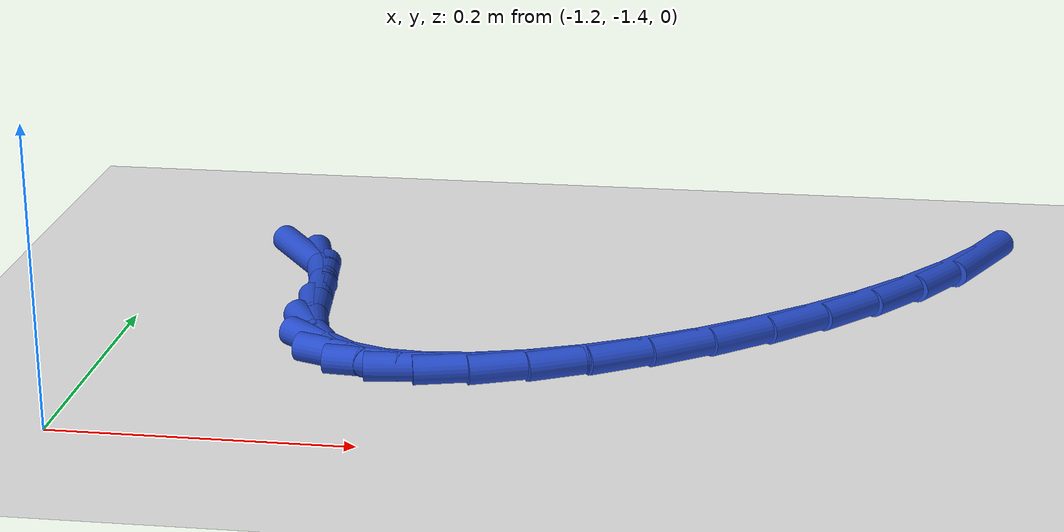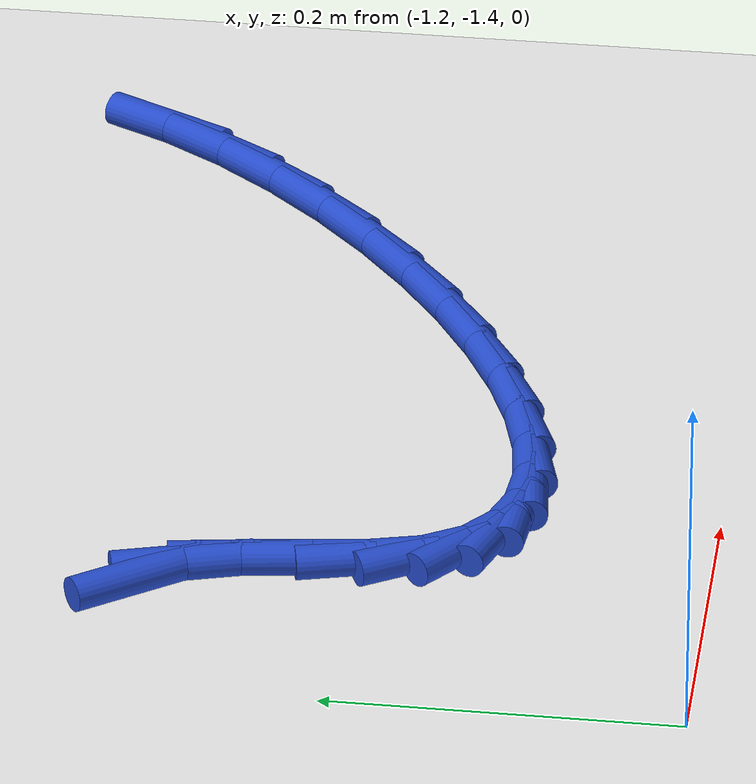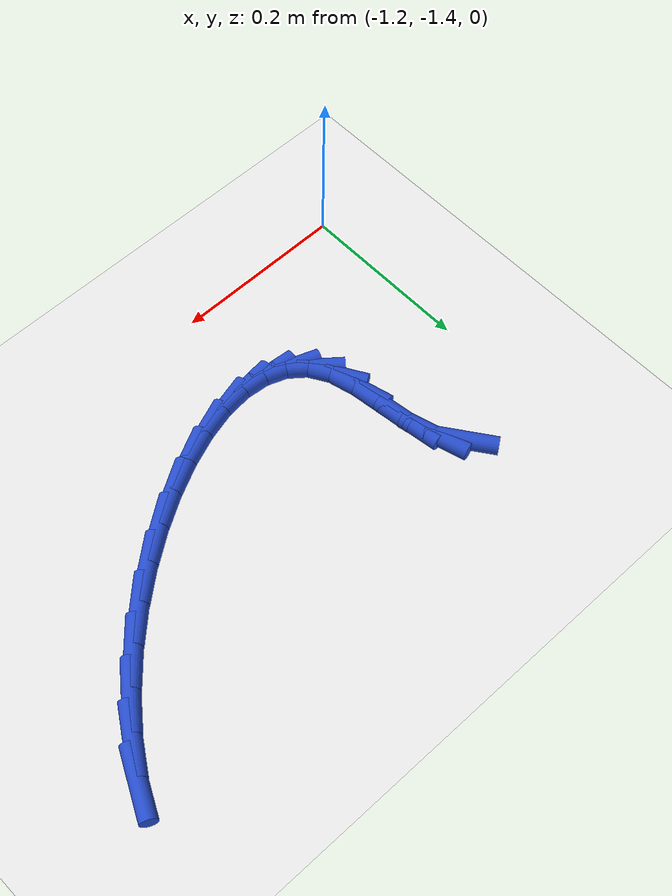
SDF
<sdf version="1.6">
 <world name="default">
  <model name="ground_plane">
   <static>1</static>
   <link name="link">
    <collision name="collision">
     <geometry><plane><normal>0 0 1</normal><size>100 100</size></plane></geometry>
     <surface><friction><ode><mu>100</mu><mu2>50</mu2></ode></friction></surface>
    </collision>
    <visual name="visual">
     <cast_shadows>0</cast_shadows>
     <geometry><plane><normal>0 0 1</normal><size>100 100</size></plane></geometry>
     <material>
      <script><uri>file://media/materials/scripts/gazebo.material</uri><name>Gazebo/WhiteGlow</name></script>
     </material>
    </visual>
   </link>
  </model>
  <model name="line">
   <link name="link_180">
    <pose>-1.1045294670272443 -1.0874800562120643 0.01 0 1.57 -0.9513362794948008</pose>
    <collision name="collision">
     <geometry><cylinder><radius>0.01</radius><length>0.08</length></cylinder></geometry>
    </collision>
    <visual name="visual">
     <material>
      <script><name>Gazebo/Blue</name><uri>file://media/materials/scripts/gazebo.material</uri></script>
     </material>
     <geometry><cylinder><radius>0.01</radius><length>0.08</length></cylinder></geometry>
    </visual>
   </link>
   <link name="link_181">
    <pose>-1.0882827555828418 -1.1102634585634008 0.01 0 1.57 -1.2917766935045316</pose>
    <collision name="collision">
     <geometry><cylinder><radius>0.01</radius><length>0.08</length></cylinder></geometry>
    </collision>
    <visual name="visual">
     <material>
      <script><name>Gazebo/Blue</name><uri>file://media/materials/scripts/gazebo.material</uri></script>
     </material>
     <geometry><cylinder><radius>0.01</radius><length>0.08</length></cylinder></geometry>
    </visual>
   </link>
   <link name="link_182">
    <pose>-1.0794759034892234 -1.1410036376848234 0.01 0 1.57 -1.4316104462876618</pose>
    <collision name="collision">
     <geometry><cylinder><radius>0.01</radius><length>0.08</length></cylinder></geometry>
    </collision>
    <visual name="visual">
     <material>
      <script><name>Gazebo/Blue</name><uri>file://media/materials/scripts/gazebo.material</uri></script>
     </material>
     <geometry><cylinder><radius>0.01</radius><length>0.08</length></cylinder></geometry>
    </visual>
   </link>
   <link name="link_183">
    <pose>-1.0746142760509956 -1.1757068166357503 0.01 0 1.57 -1.4407532262533798</pose>
    <collision name="collision">
     <geometry><cylinder><radius>0.01</radius><length>0.08</length></cylinder></geometry>
    </collision>
    <visual name="visual">
     <material>
      <script><name>Gazebo/Blue</name><uri>file://media/materials/scripts/gazebo.material</uri></script>
     </material>
     <geometry><cylinder><radius>0.01</radius><length>0.08</length></cylinder></geometry>
    </visual>
   </link>
   <link name="link_184">
    <pose>-1.0700949304319776 -1.2102633672526701 0.01 0 1.57 -1.31950647480521</pose>
    <collision name="collision">
     <geometry><cylinder><radius>0.01</radius><length>0.08</length></cylinder></geometry>
    </collision>
    <visual name="visual">
     <material>
      <script><name>Gazebo/Blue</name><uri>file://media/materials/scripts/gazebo.material</uri></script>
     </material>
     <geometry><cylinder><radius>0.01</radius><length>0.08</length></cylinder></geometry>
    </visual>
   </link>
   <link name="link_185">
    <pose>-1.0623160467386241 -1.2405648438472037 0.01 0 1.57 -1.035546993238269</pose>
    <collision name="collision">
     <geometry><cylinder><radius>0.01</radius><length>0.08</length></cylinder></geometry>
    </collision>
    <visual name="visual">
     <material>
      <script><name>Gazebo/Blue</name><uri>file://media/materials/scripts/gazebo.material</uri></script>
     </material>
     <geometry><cylinder><radius>0.01</radius><length>0.08</length></cylinder></geometry>
    </visual>
   </link>
   <link name="link_186">
    <pose>-1.0486800031890582 -1.2635602361282856 0.01 0 1.57 -0.6825625539469409</pose>
    <collision name="collision">
     <geometry><cylinder><radius>0.01</radius><length>0.08</length></cylinder></geometry>
    </collision>
    <visual name="visual">
     <material>
      <script><name>Gazebo/Blue</name><uri>file://media/materials/scripts/gazebo.material</uri></script>
     </material>
     <geometry><cylinder><radius>0.01</radius><length>0.08</length></cylinder></geometry>
    </visual>
   </link>
   <link name="link_187">
    <pose>-1.029440057078095 -1.2792005514487284 0.01 0 1.57 -0.3489924843299311</pose>
    <collision name="collision">
     <geometry><cylinder><radius>0.01</radius><length>0.08</length></cylinder></geometry>
    </collision>
    <visual name="visual">
     <material>
      <script><name>Gazebo/Blue</name><uri>file://media/materials/scripts/gazebo.material</uri></script>
     </material>
     <geometry><cylinder><radius>0.01</radius><length>0.08</length></cylinder></geometry>
    </visual>
   </link>
   <link name="link_188">
    <pose>-1.0053519384157539 -1.2879659083288177 0.01 0 1.57 -0.08392130003548401</pose>
    <collision name="collision">
     <geometry><cylinder><radius>0.01</radius><length>0.08</length></cylinder></geometry>
    </collision>
    <visual name="visual">
     <material>
      <script><name>Gazebo/Blue</name><uri>file://media/materials/scripts/gazebo.material</uri></script>
     </material>
     <geometry><cylinder><radius>0.01</radius><length>0.08</length></cylinder></geometry>
    </visual>
   </link>
   <link name="link_189">
    <pose>-0.9771713772120537 -1.2903364252888414 0.01 0 1.57 0.11198231323475359</pose>
    <collision name="collision">
     <geometry><cylinder><radius>0.01</radius><length>0.08</length></cylinder></geometry>
    </collision>
    <visual name="visual">
     <material>
      <script><name>Gazebo/Blue</name><uri>file://media/materials/scripts/gazebo.material</uri></script>
     </material>
     <geometry><cylinder><radius>0.01</radius><length>0.08</length></cylinder></geometry>
    </visual>
   </link>
   <link name="link_190">
    <pose>-0.9456541034770121 -1.2867922208490854 0.01 0 1.57 0.25747680932476075</pose>
    <collision name="collision">
     <geometry><cylinder><radius>0.01</radius><length>0.08</length></cylinder></geometry>
    </collision>
    <visual name="visual">
     <material>
      <script><name>Gazebo/Blue</name><uri>file://media/materials/scripts/gazebo.material</uri></script>
     </material>
     <geometry><cylinder><radius>0.01</radius><length>0.08</length></cylinder></geometry>
    </visual>
   </link>
   <link name="link_191">
    <pose>-0.9115558472206479 -1.277813413529837 0.01 0 1.57 0.3699972413202077</pose>
    <collision name="collision">
     <geometry><cylinder><radius>0.01</radius><length>0.08</length></cylinder></geometry>
    </collision>
    <visual name="visual">
     <material>
      <script><name>Gazebo/Blue</name><uri>file://media/materials/scripts/gazebo.material</uri></script>
     </material>
     <geometry><cylinder><radius>0.01</radius><length>0.08</length></cylinder></geometry>
    </visual>
   </link>
   <link name="link_192">
    <pose>-0.8756323384529782 -1.263880121851381 0.01 0 1.57 0.46172414477691276</pose>
    <collision name="collision">
     <geometry><cylinder><radius>0.01</radius><length>0.08</length></cylinder></geometry>
    </collision>
    <visual name="visual">
     <material>
      <script><name>Gazebo/Blue</name><uri>file://media/materials/scripts/gazebo.material</uri></script>
     </material>
     <geometry><cylinder><radius>0.01</radius><length>0.08</length></cylinder></geometry>
    </visual>
   </link>
   <link name="link_193">
    <pose>-0.8386393071840237 -1.2454724643340065 0.01 0 1.57 0.5407704617044105</pose>
    <collision name="collision">
     <geometry><cylinder><radius>0.01</radius><length>0.08</length></cylinder></geometry>
    </collision>
    <visual name="visual">
     <material>
      <script><name>Gazebo/Blue</name><uri>file://media/materials/scripts/gazebo.material</uri></script>
     </material>
     <geometry><cylinder><radius>0.01</radius><length>0.08</length></cylinder></geometry>
    </visual>
   </link>
   <link name="link_194">
    <pose>-0.8013324834238018 -1.2230705594979987 0.01 0 1.57 0.6127368885693836</pose>
    <collision name="collision">
     <geometry><cylinder><radius>0.01</radius><length>0.08</length></cylinder></geometry>
    </collision>
    <visual name="visual">
     <material>
      <script><name>Gazebo/Blue</name><uri>file://media/materials/scripts/gazebo.material</uri></script>
     </material>
     <geometry><cylinder><radius>0.01</radius><length>0.08</length></cylinder></geometry>
    </visual>
   </link>
   <link name="link_195">
    <pose>-0.7644675971823311 -1.1971545258636442 0.01 0 1.57 0.6818169481141936</pose>
    <collision name="collision">
     <geometry><cylinder><radius>0.01</radius><length>0.08</length></cylinder></geometry>
    </collision>
    <visual name="visual">
     <material>
      <script><name>Gazebo/Blue</name><uri>file://media/materials/scripts/gazebo.material</uri></script>
     </material>
     <geometry><cylinder><radius>0.01</radius><length>0.08</length></cylinder></geometry>
    </visual>
   </link>
   <link name="link_196">
    <pose>-0.72880037846963 -1.1682044819512303 0.01 0 1.57 0.7515264018577763</pose>
    <collision name="collision">
     <geometry><cylinder><radius>0.01</radius><length>0.08</length></cylinder></geometry>
    </collision>
    <visual name="visual">
     <material>
      <script><name>Gazebo/Blue</name><uri>file://media/materials/scripts/gazebo.material</uri></script>
     </material>
     <geometry><cylinder><radius>0.01</radius><length>0.08</length></cylinder></geometry>
    </visual>
   </link>
   <link name="link_197">
    <pose>-0.6950865572957168 -1.1367005462810431 0.01 0 1.57 0.8252179146422697</pose>
    <collision name="collision">
     <geometry><cylinder><radius>0.01</radius><length>0.08</length></cylinder></geometry>
    </collision>
    <visual name="visual">
     <material>
      <script><name>Gazebo/Blue</name><uri>file://media/materials/scripts/gazebo.material</uri></script>
     </material>
     <geometry><cylinder><radius>0.01</radius><length>0.08</length></cylinder></geometry>
    </visual>
   </link>
   <link name="link_198">
    <pose>-0.6640818636706101 -1.1031228373733697 0.01 0 1.57 0.9064959332313254</pose>
    <collision name="collision">
     <geometry><cylinder><radius>0.01</radius><length>0.08</length></cylinder></geometry>
    </collision>
    <visual name="visual">
     <material>
      <script><name>Gazebo/Blue</name><uri>file://media/materials/scripts/gazebo.material</uri></script>
     </material>
     <geometry><cylinder><radius>0.01</radius><length>0.08</length></cylinder></geometry>
    </visual>
   </link>
   <link name="link_199">
    <pose>-0.6365420276043282 -1.067951473748496 0.01 0 1.57 0.9995906542630617</pose>
    <collision name="collision">
     <geometry><cylinder><radius>0.01</radius><length>0.08</length></cylinder></geometry>
    </collision>
    <visual name="visual">
     <material>
      <script><name>Gazebo/Blue</name><uri>file://media/materials/scripts/gazebo.material</uri></script>
     </material>
     <geometry><cylinder><radius>0.01</radius><length>0.08</length></cylinder></geometry>
    </visual>
   </link>
   <link name="link_200">
    <pose>-0.6132227791068893 -1.0316665739267084 0.01 0 1.57 1.1096704824194656</pose>
    <collision name="collision">
     <geometry><cylinder><radius>0.01</radius><length>0.08</length></cylinder></geometry>
    </collision>
    <visual name="visual">
     <material>
      <script><name>Gazebo/Blue</name><uri>file://media/materials/scripts/gazebo.material</uri></script>
     </material>
     <geometry><cylinder><radius>0.01</radius><length>0.08</length></cylinder></geometry>
    </visual>
   </link>
  </model>
 </world>
</sdf>
